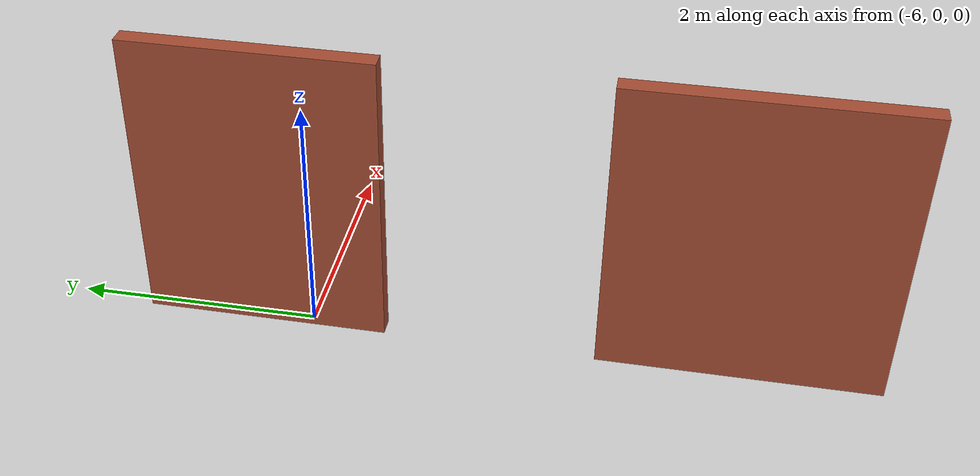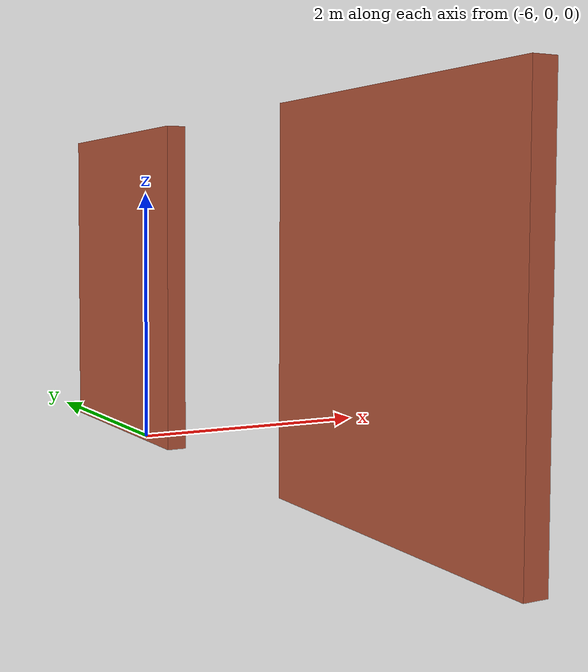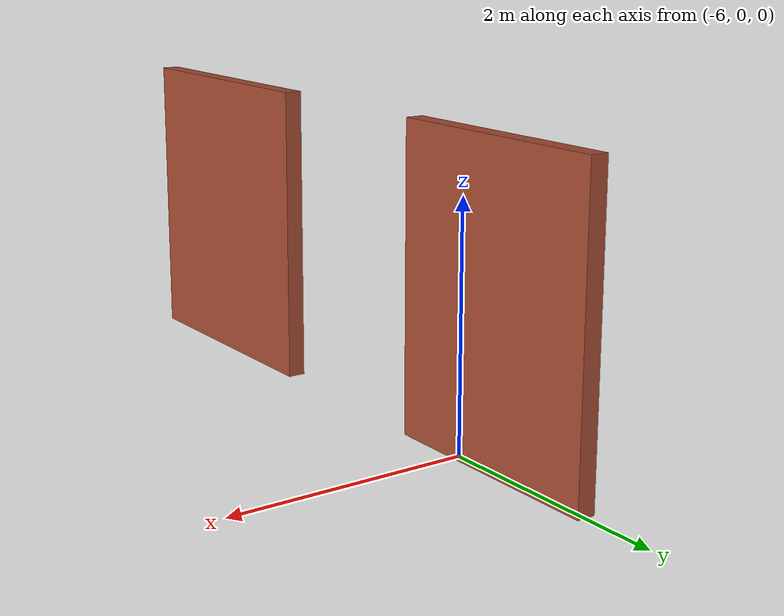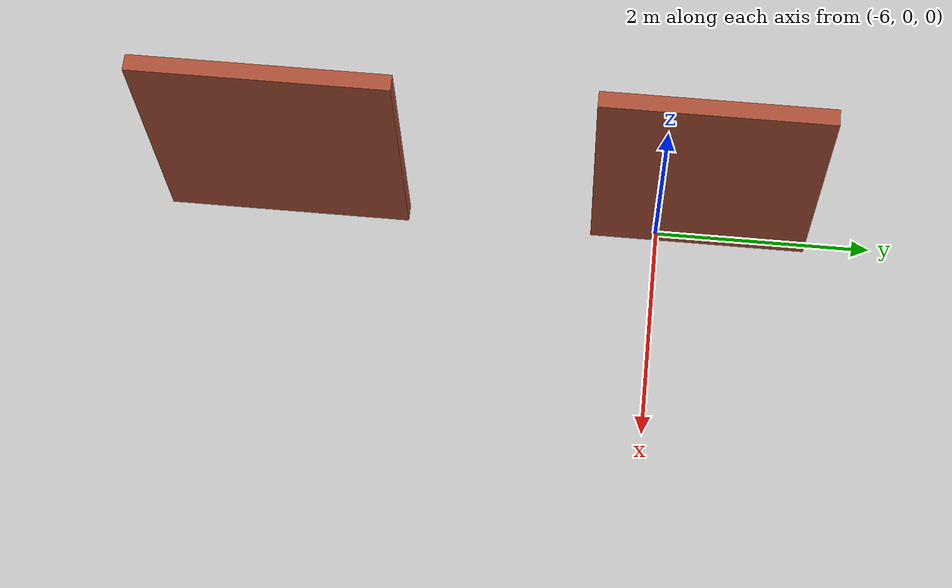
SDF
<?xml version='1.0'?>
<sdf version='1.6'>
  <model name='indoor2'>
    <pose frame=''>-6.00679 -1.59923 0 0 -0 0</pose>
    <link name='Wall_1'>
      <collision name='Wall_1_Collision'>
        <geometry>
          <box>
            <size>2 0.15 2.5</size>
          </box>
        </geometry>
        <pose frame=''>0 0 1.25 0 -0 0</pose>
      </collision>
      <visual name='Wall_1_Visual'>
        <pose frame=''>0 0 1.25 0 -0 0</pose>
        <geometry>
          <box>
            <size>2 0.15 2.5</size>
          </box>
        </geometry>
        <material>
          <script>
            <uri>file://media/materials/scripts/gazebo.material</uri>
            <name>Gazebo/Bricks</name>
          </script>
          <ambient>1 1 1 1</ambient>
        </material>
        <meta>
          <layer>0</layer>
        </meta>
      </visual>
      <pose frame=''>-0.000383 1.98639 0 0 -0 1.5708</pose>
    </link>
    <link name='Wall_3'>
      <collision name='Wall_3_Collision'>
        <geometry>
          <box>
            <size>2.25 0.15 2.5</size>
          </box>
        </geometry>
        <pose frame=''>0 0 1.25 0 -0 0</pose>
      </collision>
      <visual name='Wall_3_Visual'>
        <pose frame=''>0 0 1.25 0 -0 0</pose>
        <geometry>
          <box>
            <size>2.25 0.15 2.5</size>
          </box>
        </geometry>
        <material>
          <script>
            <uri>file://media/materials/scripts/gazebo.material</uri>
            <name>Gazebo/Bricks</name>
          </script>
          <ambient>1 1 1 1</ambient>
        </material>
        <meta>
          <layer>0</layer>
        </meta>
      </visual>
      <pose frame=''>0.000383 -1.86139 0 0 -0 1.5708</pose>
    </link>
    <static>1</static>
  </model>
</sdf>
